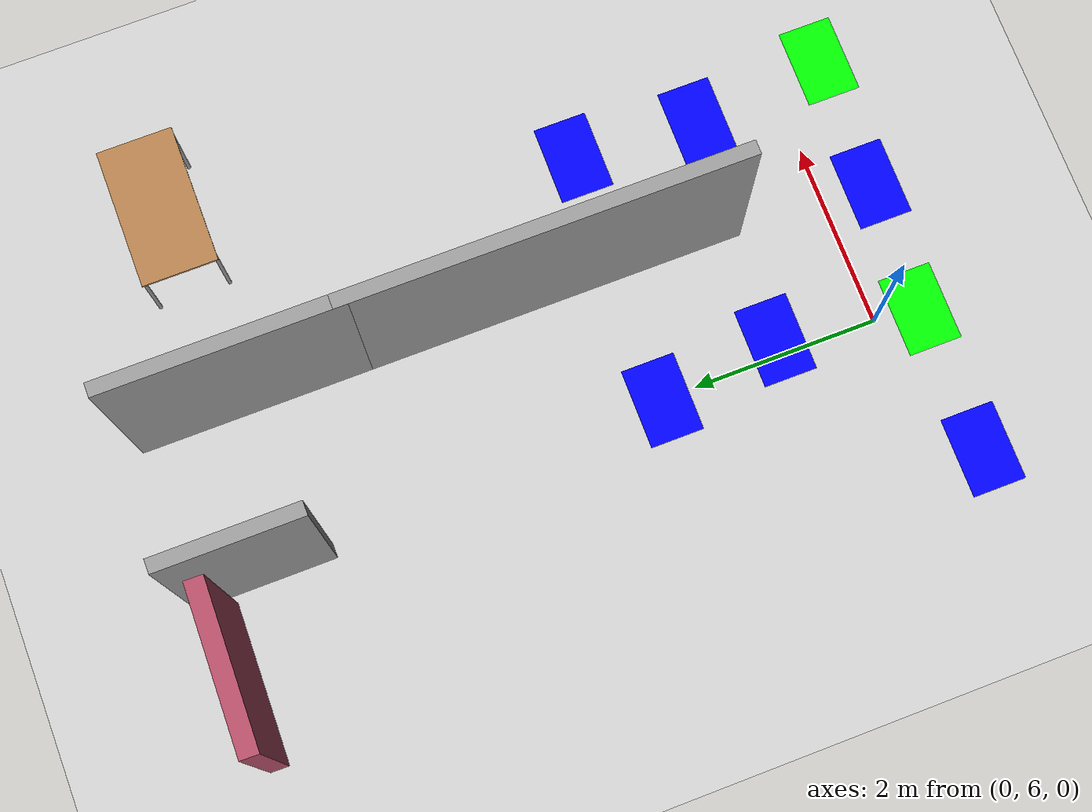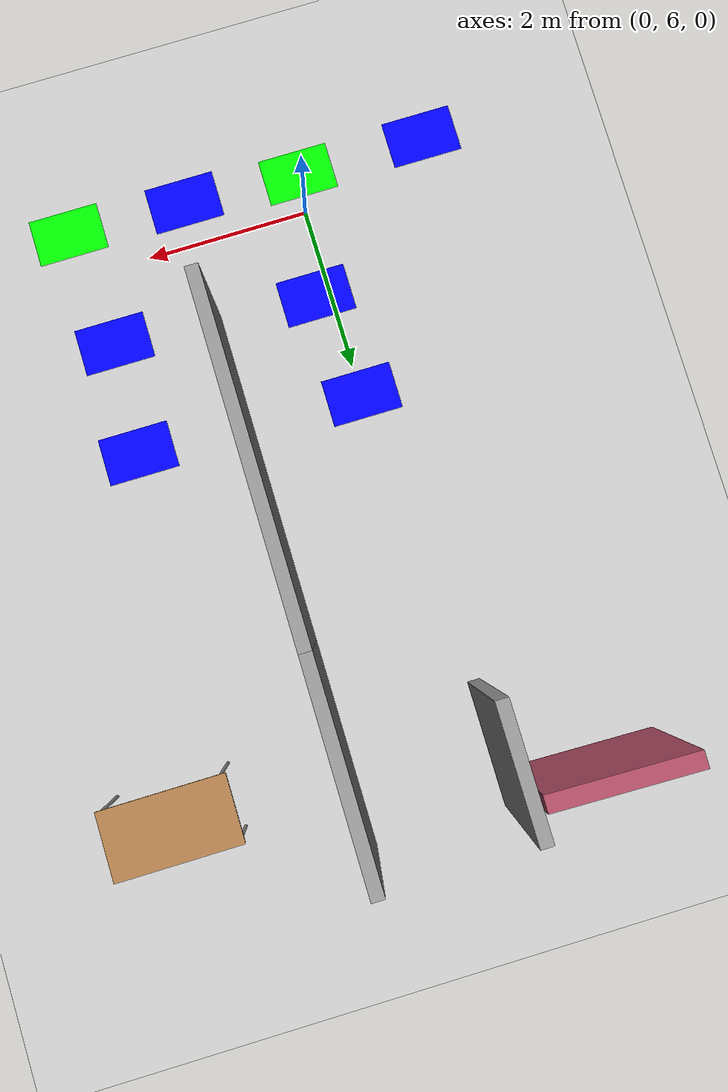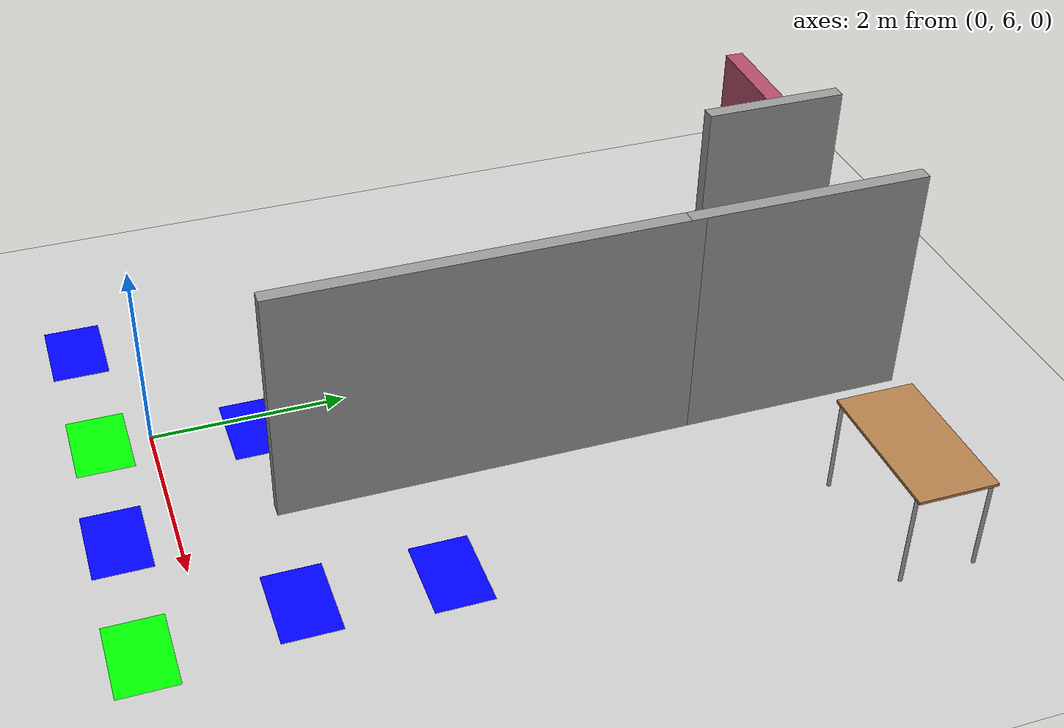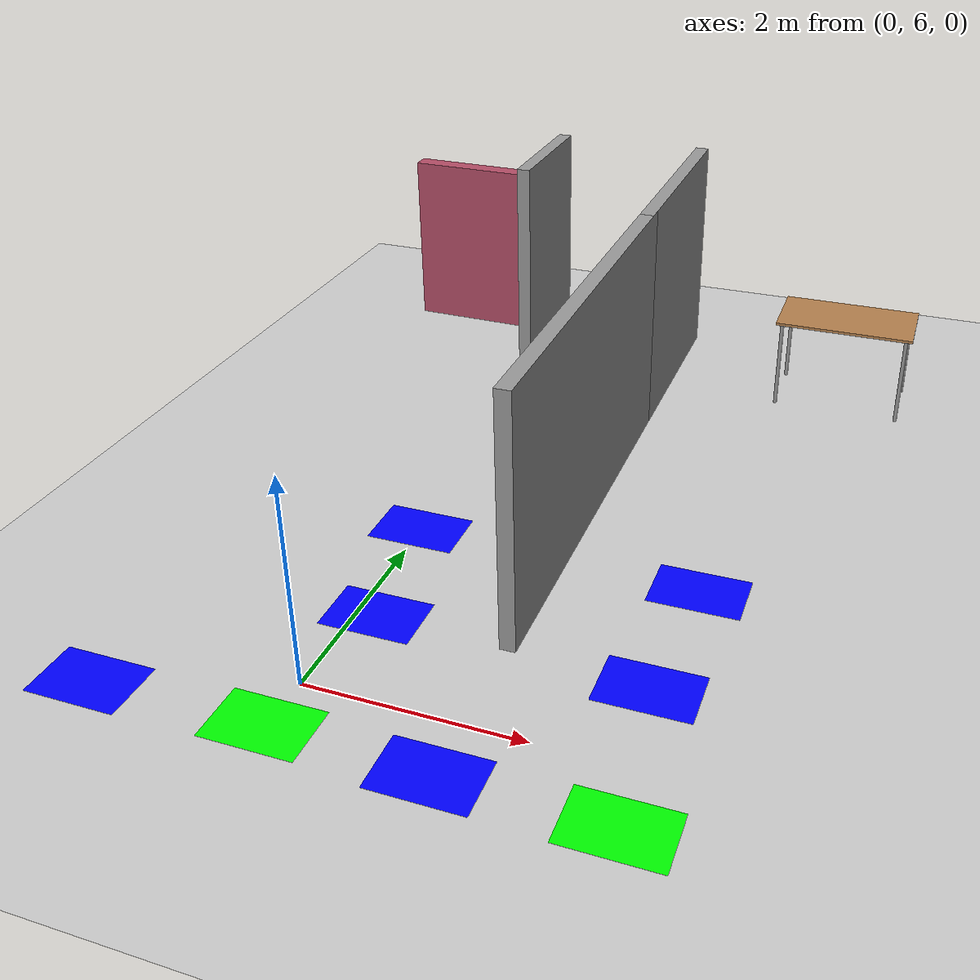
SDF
<sdf version="1.6">
 <world name="default">
  <model name="ground_plane">
   <pose>0 0 0.001 0 -0 0</pose>
   <static>1</static>
   <link name="link">
    <collision name="collision">
     <geometry><plane><normal>0 0 1</normal><size>100 100</size></plane></geometry>
     <surface><friction><ode><mu>100</mu><mu2>50</mu2></ode></friction></surface>
    </collision>
    <visual name="visual">
     <cast_shadows>0</cast_shadows>
     <geometry><plane><normal>0 0 1</normal><size>100 100</size></plane></geometry>
     <material>
      <script><uri>file://media/materials/scripts/gazebo.material</uri><name>Gazebo/Grey</name></script>
     </material>
    </visual>
   </link>
  </model>
  <model name="table_10">
   <static>1</static>
   <link name="link">
    <collision name="surface">
     <pose>0 0 1 0 -0 0</pose>
     <geometry><box><size>1.5 0.8 0.03</size></box></geometry>
     <surface><friction><ode><mu>0.6</mu><mu2>0.6</mu2></ode></friction></surface>
    </collision>
    <visual name="visual1">
     <pose>0 0 1 0 -0 0</pose>
     <geometry><box><size>1.5 0.8 0.03</size></box></geometry>
     <material>
      <script><uri>file://media/materials/scripts/gazebo.material</uri><name>Gazebo/Wood</name></script>
     </material>
    </visual>
    <collision name="front_left_leg">
     <pose>0.68 0.38 0.5 0 -0 0</pose>
     <geometry><cylinder><radius>0.02</radius><length>1</length></cylinder></geometry>
    </collision>
    <visual name="front_left_leg">
     <pose>0.68 0.38 0.5 0 -0 0</pose>
     <geometry><cylinder><radius>0.02</radius><length>1</length></cylinder></geometry>
     <material>
      <script><uri>file://media/materials/scripts/gazebo.material</uri><name>Gazebo/Grey</name></script>
     </material>
    </visual>
    <collision name="front_right_leg">
     <pose>0.68 -0.38 0.5 0 -0 0</pose>
     <geometry><cylinder><radius>0.02</radius><length>1</length></cylinder></geometry>
    </collision>
    <visual name="front_right_leg">
     <pose>0.68 -0.38 0.5 0 -0 0</pose>
     <geometry><cylinder><radius>0.02</radius><length>1</length></cylinder></geometry>
     <material>
      <script><uri>file://media/materials/scripts/gazebo.material</uri><name>Gazebo/Grey</name></script>
     </material>
    </visual>
    <collision name="back_right_leg">
     <pose>-0.68 -0.38 0.5 0 -0 0</pose>
     <geometry><cylinder><radius>0.02</radius><length>1</length></cylinder></geometry>
    </collision>
    <visual name="back_right_leg">
     <pose>-0.68 -0.38 0.5 0 -0 0</pose>
     <geometry><cylinder><radius>0.02</radius><length>1</length></cylinder></geometry>
     <material>
      <script><uri>file://media/materials/scripts/gazebo.material</uri><name>Gazebo/Grey</name></script>
     </material>
    </visual>
    <collision name="back_left_leg">
     <pose>-0.68 0.38 0.5 0 -0 0</pose>
     <geometry><cylinder><radius>0.02</radius><length>1</length></cylinder></geometry>
    </collision>
    <visual name="back_left_leg">
     <pose>-0.68 0.38 0.5 0 -0 0</pose>
     <geometry><cylinder><radius>0.02</radius><length>1</length></cylinder></geometry>
     <material>
      <script><uri>file://media/materials/scripts/gazebo.material</uri><name>Gazebo/Grey</name></script>
     </material>
    </visual>
   </link>
   <pose>3.46371 12.5183 0.001 0 -0 0</pose>
  </model>
  <model name="corridor_14">
   <link name="link">
    <pose>0 0 0.001 0 -0 0</pose>
    <inertial>
     <mass>0.0352517</mass>
     <inertia>
      <ixx>0.00099707</ixx>
      <ixy>0</ixy>
      <ixz>0</ixz>
      <iyy>0.00220147</iyy>
      <iyz>0</iyz>
      <izz>0.0031692</izz>
     </inertia>
     <pose>0 0 0.001 0 -0 0</pose>
    </inertial>
    <visual name="visual">
     <geometry><box><size>0.862743 0.578289 1e-06</size></box></geometry>
     <material>
      <script><name>Gazebo/Grey</name><uri>file://media/materials/scripts/gazebo.material</uri></script>
      <ambient>0 1 0 1</ambient>
      <diffuse>0 1 0 1</diffuse>
      <specular>0 1 0 1</specular>
      <emissive>0 1 0 1</emissive>
      <shader type="vertex"><normal_map>__default__</normal_map></shader>
     </material>
     <pose>0 0 0.001 0 -0 0</pose>
    </visual>
    <collision name="collision">
     <pose>0 0 0.001 0 -0 0</pose>
     <geometry><box><size>0.862743 0.578289 0.000477</size></box></geometry>
     <surface>
      <friction>
       <ode><mu>1</mu><mu2>1</mu2><fdir1>0 0 0</fdir1><slip1>0</slip1><slip2>0</slip2></ode>
       <torsional>
        <coefficient>1</coefficient>
        <patch_radius>0</patch_radius>
        <surface_radius>0</surface_radius>
        <use_patch_radius>1</use_patch_radius>
        <ode><slip>0</slip></ode>
       </torsional>
      </friction>
      <bounce><restitution_coefficient>0</restitution_coefficient><threshold>1e+06</threshold></bounce>
      <contact>
       <collide_without_contact>0</collide_without_contact>
       <collide_without_contact_bitmask>1</collide_without_contact_bitmask>
       <collide_bitmask>1</collide_bitmask>
       <ode>
        <soft_cfm>0</soft_cfm>
        <soft_erp>0.2</soft_erp>
        <kp>1e+13</kp>
        <kd>1</kd>
        <max_vel>0.01</max_vel>
        <min_depth>0</min_depth>
       </ode>
       <bullet>
        <split_impulse>1</split_impulse>
        <split_impulse_penetration_threshold>-0.01</split_impulse_penetration_threshold>
        <soft_cfm>0</soft_cfm>
        <soft_erp>0.2</soft_erp>
        <kp>1e+13</kp>
        <kd>1</kd>
       </bullet>
      </contact>
     </surface>
    </collision>
   </link>
   <static>1</static>
   <pose>2.88258 5.42101 0 0 -0 0</pose>
  </model>
  <model name="intersection_24">
   <link name="link">
    <pose>0 0 0.001 0 -0 0</pose>
    <inertial>
     <mass>0.0352517</mass>
     <inertia>
      <ixx>0.000997067</ixx>
      <ixy>0</ixy>
      <ixz>0</ixz>
      <iyy>0.00220147</iyy>
      <iyz>0</iyz>
      <izz>0.0031692</izz>
     </inertia>
     <pose>0 0 0.001 0 -0 0</pose>
    </inertial>
    <visual name="visual">
     <geometry><box><size>0.862743 0.578289 1e-06</size></box></geometry>
     <material>
      <script><name>Gazebo/Grey</name><uri>file://media/materials/scripts/gazebo.material</uri></script>
      <ambient>0 0 1 1</ambient>
      <diffuse>0 0 1 1</diffuse>
      <specular>0 0 1 1</specular>
      <emissive>0 0 1 1</emissive>
      <shader type="vertex"><normal_map>__default__</normal_map></shader>
     </material>
     <pose>0 0 0.001 0 -0 0</pose>
    </visual>
    <collision name="collision">
     <pose>0 0 0.001 0 -0 0</pose>
     <geometry><box><size>0.862743 0.578289 0.000477</size></box></geometry>
     <surface>
      <friction>
       <ode><mu>1</mu><mu2>1</mu2><fdir1>0 0 0</fdir1><slip1>0</slip1><slip2>0</slip2></ode>
       <torsional>
        <coefficient>1</coefficient>
        <patch_radius>0</patch_radius>
        <surface_radius>0</surface_radius>
        <use_patch_radius>1</use_patch_radius>
        <ode><slip>0</slip></ode>
       </torsional>
      </friction>
      <bounce><restitution_coefficient>0</restitution_coefficient><threshold>1e+06</threshold></bounce>
      <contact>
       <collide_without_contact>0</collide_without_contact>
       <collide_without_contact_bitmask>1</collide_without_contact_bitmask>
       <collide_bitmask>1</collide_bitmask>
       <ode>
        <soft_cfm>0</soft_cfm>
        <soft_erp>0.2</soft_erp>
        <kp>1e+13</kp>
        <kd>1</kd>
        <max_vel>0.01</max_vel>
        <min_depth>0</min_depth>
       </ode>
       <bullet>
        <split_impulse>1</split_impulse>
        <split_impulse_penetration_threshold>-0.01</split_impulse_penetration_threshold>
        <soft_cfm>0</soft_cfm>
        <soft_erp>0.2</soft_erp>
        <kp>1e+13</kp>
        <kd>1</kd>
       </bullet>
      </contact>
     </surface>
    </collision>
   </link>
   <static>1</static>
   <pose>2.70512 6.89942 0 0 -0 0</pose>
  </model>
  <model name="corridor_15">
   <link name="link">
    <pose>0 0 0.001 0 -0 0</pose>
    <inertial>
     <mass>0.0352517</mass>
     <inertia>
      <ixx>0.00099707</ixx>
      <ixy>0</ixy>
      <ixz>0</ixz>
      <iyy>0.00220147</iyy>
      <iyz>0</iyz>
      <izz>0.0031692</izz>
     </inertia>
     <pose>0 0 0.001 0 -0 0</pose>
    </inertial>
    <visual name="visual">
     <geometry><box><size>0.862743 0.578289 1e-06</size></box></geometry>
     <material>
      <script><name>Gazebo/Grey</name><uri>file://media/materials/scripts/gazebo.material</uri></script>
      <ambient>0 1 0 1</ambient>
      <diffuse>0 1 0 1</diffuse>
      <specular>0 1 0 1</specular>
      <emissive>0 1 0 1</emissive>
      <shader type="vertex"><normal_map>__default__</normal_map></shader>
     </material>
     <pose>0 0 0.001 0 -0 0</pose>
    </visual>
    <collision name="collision">
     <pose>0 0 0.001 0 -0 0</pose>
     <geometry><box><size>0.862743 0.578289 0.000477</size></box></geometry>
     <surface>
      <friction>
       <ode><mu>1</mu><mu2>1</mu2><fdir1>0 0 0</fdir1><slip1>0</slip1><slip2>0</slip2></ode>
       <torsional>
        <coefficient>1</coefficient>
        <patch_radius>0</patch_radius>
        <surface_radius>0</surface_radius>
        <use_patch_radius>1</use_patch_radius>
        <ode><slip>0</slip></ode>
       </torsional>
      </friction>
      <bounce><restitution_coefficient>0</restitution_coefficient><threshold>1e+06</threshold></bounce>
      <contact>
       <collide_without_contact>0</collide_without_contact>
       <collide_without_contact_bitmask>1</collide_without_contact_bitmask>
       <collide_bitmask>1</collide_bitmask>
       <ode>
        <soft_cfm>0</soft_cfm>
        <soft_erp>0.2</soft_erp>
        <kp>1e+13</kp>
        <kd>1</kd>
        <max_vel>0.01</max_vel>
        <min_depth>0</min_depth>
       </ode>
       <bullet>
        <split_impulse>1</split_impulse>
        <split_impulse_penetration_threshold>-0.01</split_impulse_penetration_threshold>
        <soft_cfm>0</soft_cfm>
        <soft_erp>0.2</soft_erp>
        <kp>1e+13</kp>
        <kd>1</kd>
       </bullet>
      </contact>
     </surface>
    </collision>
   </link>
   <static>1</static>
   <pose>-0.049046 5.49624 0 0 -0 0</pose>
  </model>
  <model name="intersection_25">
   <link name="link">
    <pose>0 0 0.001 0 -0 0</pose>
    <inertial>
     <mass>0.0352517</mass>
     <inertia>
      <ixx>0.000997067</ixx>
      <ixy>0</ixy>
      <ixz>0</ixz>
      <iyy>0.00220147</iyy>
      <iyz>0</iyz>
      <izz>0.0031692</izz>
     </inertia>
     <pose>0 0 0.001 0 -0 0</pose>
    </inertial>
    <visual name="visual">
     <geometry><box><size>0.862743 0.578289 1e-06</size></box></geometry>
     <material>
      <script><name>Gazebo/Grey</name><uri>file://media/materials/scripts/gazebo.material</uri></script>
      <ambient>0 0 1 1</ambient>
      <diffuse>0 0 1 1</diffuse>
      <specular>0 0 1 1</specular>
      <emissive>0 0 1 1</emissive>
      <shader type="vertex"><normal_map>__default__</normal_map></shader>
     </material>
     <pose>0 0 0.001 0 -0 0</pose>
    </visual>
    <collision name="collision">
     <pose>0 0 0.001 0 -0 0</pose>
     <geometry><box><size>0.862743 0.578289 0.000477</size></box></geometry>
     <surface>
      <friction>
       <ode><mu>1</mu><mu2>1</mu2><fdir1>0 0 0</fdir1><slip1>0</slip1><slip2>0</slip2></ode>
       <torsional>
        <coefficient>1</coefficient>
        <patch_radius>0</patch_radius>
        <surface_radius>0</surface_radius>
        <use_patch_radius>1</use_patch_radius>
        <ode><slip>0</slip></ode>
       </torsional>
      </friction>
      <bounce><restitution_coefficient>0</restitution_coefficient><threshold>1e+06</threshold></bounce>
      <contact>
       <collide_without_contact>0</collide_without_contact>
       <collide_without_contact_bitmask>1</collide_without_contact_bitmask>
       <collide_bitmask>1</collide_bitmask>
       <ode>
        <soft_cfm>0</soft_cfm>
        <soft_erp>0.2</soft_erp>
        <kp>1e+13</kp>
        <kd>1</kd>
        <max_vel>0.01</max_vel>
        <min_depth>0</min_depth>
       </ode>
       <bullet>
        <split_impulse>1</split_impulse>
        <split_impulse_penetration_threshold>-0.01</split_impulse_penetration_threshold>
        <soft_cfm>0</soft_cfm>
        <soft_erp>0.2</soft_erp>
        <kp>1e+13</kp>
        <kd>1</kd>
       </bullet>
      </contact>
     </surface>
    </collision>
   </link>
   <static>1</static>
   <pose>0.175191 7.03237 0 0 -0 0</pose>
  </model>
  <model name="intersection_52">
   <link name="link">
    <pose>0 0 0.001 0 -0 0</pose>
    <inertial>
     <mass>0.0352517</mass>
     <inertia>
      <ixx>0.000997067</ixx>
      <ixy>0</ixy>
      <ixz>0</ixz>
      <iyy>0.00220147</iyy>
      <iyz>0</iyz>
      <izz>0.0031692</izz>
     </inertia>
     <pose>0 0 0.001 0 -0 0</pose>
    </inertial>
    <visual name="visual">
     <geometry><box><size>0.862743 0.578289 1e-06</size></box></geometry>
     <material>
      <script><name>Gazebo/Grey</name><uri>file://media/materials/scripts/gazebo.material</uri></script>
      <ambient>0 0 1 1</ambient>
      <diffuse>0 0 1 1</diffuse>
      <specular>0 0 1 1</specular>
      <emissive>0 0 1 1</emissive>
      <shader type="vertex"><normal_map>__default__</normal_map></shader>
     </material>
     <pose>0 0 0.001 0 -0 0</pose>
    </visual>
    <collision name="collision">
     <pose>0 0 0.001 0 -0 0</pose>
     <geometry><box><size>0.862743 0.578289 0.000477</size></box></geometry>
     <surface>
      <friction>
       <ode><mu>1</mu><mu2>1</mu2><fdir1>0 0 0</fdir1><slip1>0</slip1><slip2>0</slip2></ode>
       <torsional>
        <coefficient>1</coefficient>
        <patch_radius>0</patch_radius>
        <surface_radius>0</surface_radius>
        <use_patch_radius>1</use_patch_radius>
        <ode><slip>0</slip></ode>
       </torsional>
      </friction>
      <bounce><restitution_coefficient>0</restitution_coefficient><threshold>1e+06</threshold></bounce>
      <contact>
       <collide_without_contact>0</collide_without_contact>
       <collide_without_contact_bitmask>1</collide_without_contact_bitmask>
       <collide_bitmask>1</collide_bitmask>
       <ode>
        <soft_cfm>0</soft_cfm>
        <soft_erp>0.2</soft_erp>
        <kp>1e+13</kp>
        <kd>1</kd>
        <max_vel>0.01</max_vel>
        <min_depth>0</min_depth>
       </ode>
       <bullet>
        <split_impulse>1</split_impulse>
        <split_impulse_penetration_threshold>-0.01</split_impulse_penetration_threshold>
        <soft_cfm>0</soft_cfm>
        <soft_erp>0.2</soft_erp>
        <kp>1e+13</kp>
        <kd>1</kd>
       </bullet>
      </contact>
     </surface>
    </collision>
   </link>
   <static>1</static>
   <pose>-1.65565 5.47389 0 0 -0 0</pose>
  </model>
  <model name="intersection_53">
   <link name="link">
    <pose>0 0 0.001 0 -0 0</pose>
    <inertial>
     <mass>0.0352517</mass>
     <inertia>
      <ixx>0.000997067</ixx>
      <ixy>0</ixy>
      <ixz>0</ixz>
      <iyy>0.00220147</iyy>
      <iyz>0</iyz>
      <izz>0.0031692</izz>
     </inertia>
     <pose>0 0 0.001 0 -0 0</pose>
    </inertial>
    <visual name="visual">
     <geometry><box><size>0.862743 0.578289 1e-06</size></box></geometry>
     <material>
      <script><name>Gazebo/Grey</name><uri>file://media/materials/scripts/gazebo.material</uri></script>
      <ambient>0 0 1 1</ambient>
      <diffuse>0 0 1 1</diffuse>
      <specular>0 0 1 1</specular>
      <emissive>0 0 1 1</emissive>
      <shader type="vertex"><normal_map>__default__</normal_map></shader>
     </material>
     <pose>0 0 0.001 0 -0 0</pose>
    </visual>
    <collision name="collision">
     <pose>0 0 0.001 0 -0 0</pose>
     <geometry><box><size>0.862743 0.578289 0.000477</size></box></geometry>
     <surface>
      <friction>
       <ode><mu>1</mu><mu2>1</mu2><fdir1>0 0 0</fdir1><slip1>0</slip1><slip2>0</slip2></ode>
       <torsional>
        <coefficient>1</coefficient>
        <patch_radius>0</patch_radius>
        <surface_radius>0</surface_radius>
        <use_patch_radius>1</use_patch_radius>
        <ode><slip>0</slip></ode>
       </torsional>
      </friction>
      <bounce><restitution_coefficient>0</restitution_coefficient><threshold>1e+06</threshold></bounce>
      <contact>
       <collide_without_contact>0</collide_without_contact>
       <collide_without_contact_bitmask>1</collide_without_contact_bitmask>
       <collide_bitmask>1</collide_bitmask>
       <ode>
        <soft_cfm>0</soft_cfm>
        <soft_erp>0.2</soft_erp>
        <kp>1e+13</kp>
        <kd>1</kd>
        <max_vel>0.01</max_vel>
        <min_depth>0</min_depth>
       </ode>
       <bullet>
        <split_impulse>1</split_impulse>
        <split_impulse_penetration_threshold>-0.01</split_impulse_penetration_threshold>
        <soft_cfm>0</soft_cfm>
        <soft_erp>0.2</soft_erp>
        <kp>1e+13</kp>
        <kd>1</kd>
       </bullet>
      </contact>
     </surface>
    </collision>
   </link>
   <static>1</static>
   <pose>1.40239 5.44112 0 0 -0 0</pose>
  </model>
  <model name="Se1_cut">
   <pose>3.62364 13.9276 0 0 -0 0</pose>
   <link name="Wall_33">
    <collision name="Wall_33_Collision">
     <geometry><box><size>1.5 0.15 2.5</size></box></geometry>
     <pose>0 0 1.25 0 -0 0</pose>
    </collision>
    <visual name="Wall_33_Visual">
     <pose>0 0 1.25 0 -0 0</pose>
     <geometry><box><size>1.5 0.15 2.5</size></box></geometry>
     <material>
      <script><uri>file://media/materials/scripts/gazebo.material</uri><name>Gazebo/Grey</name></script>
      <ambient>1 1 1 1</ambient>
     </material>
    </visual>
    <pose>-3.911 -1.13352 0 0 0 -1.5708</pose>
   </link>
   <link name="Wall_35">
    <collision name="Wall_35_Collision">
     <geometry><box><size>2.5 0.15 2.5</size></box></geometry>
     <pose>0 0 1.25 0 -0 0</pose>
    </collision>
    <visual name="Wall_35_Visual">
     <pose>0 0 1.25 0 -0 0</pose>
     <geometry><box><size>2.5 0.15 2.5</size></box></geometry>
     <material>
      <script><uri>file://media/materials/scripts/gazebo.material</uri><name>Gazebo/Grey</name></script>
      <ambient>1 1 1 1</ambient>
     </material>
    </visual>
    <pose>-2.181 -1.62352 0 0 0 -1.5708</pose>
   </link>
   <link name="Wall_95">
    <collision name="Wall_95_Collision">
     <geometry><box><size>4.25 0.15 2.5</size></box></geometry>
     <pose>0 0 1.25 0 -0 0</pose>
    </collision>
    <visual name="Wall_95_Visual">
     <pose>0 0 1.25 0 -0 0</pose>
     <geometry><box><size>4.25 0.15 2.5</size></box></geometry>
     <material>
      <script><uri>file://media/materials/scripts/gazebo.material</uri><name>Gazebo/Grey</name></script>
      <ambient>1 1 1 1</ambient>
     </material>
    </visual>
    <pose>-2.181 -4.84852 0 0 0 -1.5708</pose>
   </link>
   <static>1</static>
  </model>
  <model name="doorOutside_10_clone">
   <link name="link">
    <pose>0.155539 -0.366282 0.216958 0 -0 0</pose>
    <inertial>
     <mass>2.13199</mass>
     <inertia>
      <ixx>0.452656</ixx>
      <ixy>0</ixy>
      <ixz>0</ixz>
      <iyy>0.796738</iyy>
      <iyz>0</iyz>
      <izz>0.699414</izz>
     </inertia>
    </inertial>
    <visual name="visual">
     <geometry><box><size>1.71368 0.198843 2.05986</size></box></geometry>
     <material>
      <script><name>Gazebo/Grey</name><uri>file://media/materials/scripts/gazebo.material</uri></script>
      <ambient>0.7 0.3 0.4 1</ambient>
      <diffuse>0.7 0.7 0.7 1</diffuse>
      <specular>0.01 0.01 0.01 1</specular>
      <emissive>0 0 0 1</emissive>
      <shader type="vertex"><normal_map>__default__</normal_map></shader>
      <lighting>0</lighting>
     </material>
    </visual>
    <collision name="collision">
     <geometry><box><size>1.71368 0.198843 2.05986</size></box></geometry>
     <surface>
      <friction>
       <ode><mu>1</mu><mu2>1</mu2><fdir1>0 0 0</fdir1><slip1>0</slip1><slip2>0</slip2></ode>
       <torsional>
        <coefficient>1</coefficient>
        <patch_radius>0</patch_radius>
        <surface_radius>0</surface_radius>
        <use_patch_radius>1</use_patch_radius>
        <ode><slip>0</slip></ode>
       </torsional>
      </friction>
      <bounce><restitution_coefficient>0</restitution_coefficient><threshold>1e+06</threshold></bounce>
      <contact>
       <collide_without_contact>0</collide_without_contact>
       <collide_without_contact_bitmask>1</collide_without_contact_bitmask>
       <collide_bitmask>1</collide_bitmask>
       <ode>
        <soft_cfm>0</soft_cfm>
        <soft_erp>0.2</soft_erp>
        <kp>1e+13</kp>
        <kd>1</kd>
        <max_vel>0.01</max_vel>
        <min_depth>0</min_depth>
       </ode>
       <bullet>
        <split_impulse>1</split_impulse>
        <split_impulse_penetration_threshold>-0.01</split_impulse_penetration_threshold>
        <soft_cfm>0</soft_cfm>
        <soft_erp>0.2</soft_erp>
        <kp>1e+13</kp>
        <kd>1</kd>
       </bullet>
      </contact>
     </surface>
    </collision>
   </link>
   <static>0</static>
   <pose>-1.4442 13.6261 0.812972 0 0 -0.022218</pose>
  </model>
  <model name="intersection_33_clone_7">
   <link name="link">
    <pose>0 0 0.001 0 -0 0</pose>
    <inertial>
     <mass>0.0352517</mass>
     <inertia>
      <ixx>0.000997067</ixx>
      <ixy>0</ixy>
      <ixz>0</ixz>
      <iyy>0.00220147</iyy>
      <iyz>0</iyz>
      <izz>0.0031692</izz>
     </inertia>
     <pose>0 0 0.001 0 -0 0</pose>
    </inertial>
    <visual name="visual">
     <geometry><box><size>0.862743 0.578289 1e-06</size></box></geometry>
     <material>
      <script><name>Gazebo/Grey</name><uri>file://media/materials/scripts/gazebo.material</uri></script>
      <ambient>0 0 1 1</ambient>
      <diffuse>0 0 1 1</diffuse>
      <specular>0 0 1 1</specular>
      <emissive>0 0 1 1</emissive>
      <shader type="vertex"><normal_map>__default__</normal_map></shader>
     </material>
     <pose>0 0 0.001 0 -0 0</pose>
    </visual>
    <collision name="collision">
     <pose>0 0 0.001 0 -0 0</pose>
     <geometry><box><size>0.862743 0.578289 0.000477</size></box></geometry>
     <surface>
      <friction>
       <ode><mu>1</mu><mu2>1</mu2><fdir1>0 0 0</fdir1><slip1>0</slip1><slip2>0</slip2></ode>
       <torsional>
        <coefficient>1</coefficient>
        <patch_radius>0</patch_radius>
        <surface_radius>0</surface_radius>
        <use_patch_radius>1</use_patch_radius>
        <ode><slip>0</slip></ode>
       </torsional>
      </friction>
      <bounce><restitution_coefficient>0</restitution_coefficient><threshold>1e+06</threshold></bounce>
      <contact>
       <collide_without_contact>0</collide_without_contact>
       <collide_without_contact_bitmask>1</collide_without_contact_bitmask>
       <collide_bitmask>1</collide_bitmask>
       <ode>
        <soft_cfm>0</soft_cfm>
        <soft_erp>0.2</soft_erp>
        <kp>1e+13</kp>
        <kd>1</kd>
        <max_vel>0.01</max_vel>
        <min_depth>0</min_depth>
       </ode>
       <bullet>
        <split_impulse>1</split_impulse>
        <split_impulse_penetration_threshold>-0.01</split_impulse_penetration_threshold>
        <soft_cfm>0</soft_cfm>
        <soft_erp>0.2</soft_erp>
        <kp>1e+13</kp>
        <kd>1</kd>
       </bullet>
      </contact>
     </surface>
    </collision>
   </link>
   <static>1</static>
   <pose>2.79059 8.28352 0.011897 0 -0 0</pose>
  </model>
  <model name="intersection_33_clone_8">
   <link name="link">
    <pose>0 0 0.001 0 -0 0</pose>
    <inertial>
     <mass>0.0352517</mass>
     <inertia>
      <ixx>0.000997067</ixx>
      <ixy>0</ixy>
      <ixz>0</ixz>
      <iyy>0.00220147</iyy>
      <iyz>0</iyz>
      <izz>0.0031692</izz>
     </inertia>
     <pose>0 0 0.001 0 -0 0</pose>
    </inertial>
    <visual name="visual">
     <geometry><box><size>0.862743 0.578289 1e-06</size></box></geometry>
     <material>
      <script><name>Gazebo/Grey</name><uri>file://media/materials/scripts/gazebo.material</uri></script>
      <ambient>0 0 1 1</ambient>
      <diffuse>0 0 1 1</diffuse>
      <specular>0 0 1 1</specular>
      <emissive>0 0 1 1</emissive>
      <shader type="vertex"><normal_map>__default__</normal_map></shader>
     </material>
     <pose>0 0 0.001 0 -0 0</pose>
    </visual>
    <collision name="collision">
     <pose>0 0 0.001 0 -0 0</pose>
     <geometry><box><size>0.862743 0.578289 0.000477</size></box></geometry>
     <surface>
      <friction>
       <ode><mu>1</mu><mu2>1</mu2><fdir1>0 0 0</fdir1><slip1>0</slip1><slip2>0</slip2></ode>
       <torsional>
        <coefficient>1</coefficient>
        <patch_radius>0</patch_radius>
        <surface_radius>0</surface_radius>
        <use_patch_radius>1</use_patch_radius>
        <ode><slip>0</slip></ode>
       </torsional>
      </friction>
      <bounce><restitution_coefficient>0</restitution_coefficient><threshold>1e+06</threshold></bounce>
      <contact>
       <collide_without_contact>0</collide_without_contact>
       <collide_without_contact_bitmask>1</collide_without_contact_bitmask>
       <collide_bitmask>1</collide_bitmask>
       <ode>
        <soft_cfm>0</soft_cfm>
        <soft_erp>0.2</soft_erp>
        <kp>1e+13</kp>
        <kd>1</kd>
        <max_vel>0.01</max_vel>
        <min_depth>0</min_depth>
       </ode>
       <bullet>
        <split_impulse>1</split_impulse>
        <split_impulse_penetration_threshold>-0.01</split_impulse_penetration_threshold>
        <soft_cfm>0</soft_cfm>
        <soft_erp>0.2</soft_erp>
        <kp>1e+13</kp>
        <kd>1</kd>
       </bullet>
      </contact>
     </surface>
    </collision>
   </link>
   <static>1</static>
   <pose>-0.008528 8.36771 0.011897 0 -0 0</pose>
  </model>
 </world>
</sdf>
